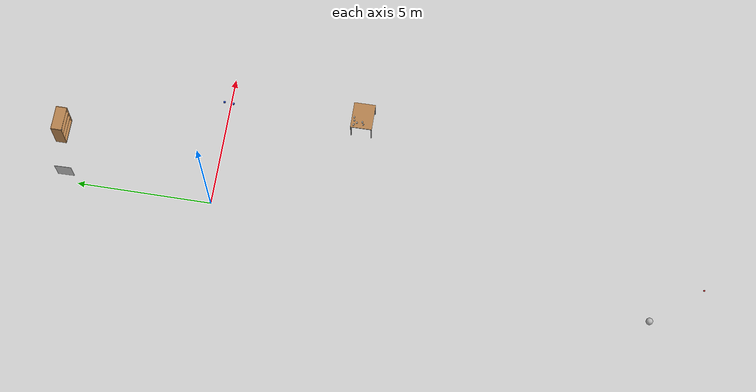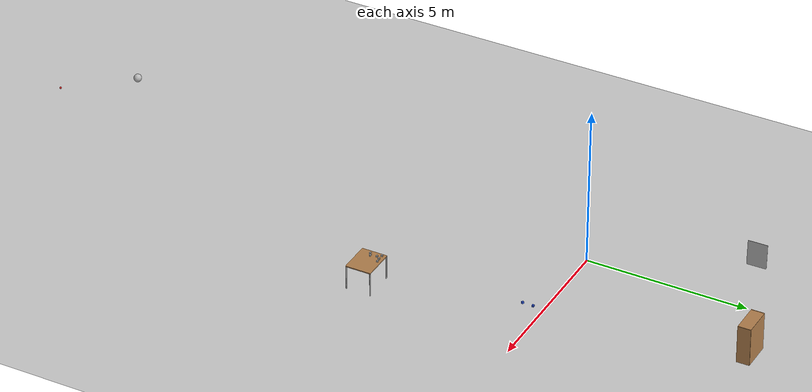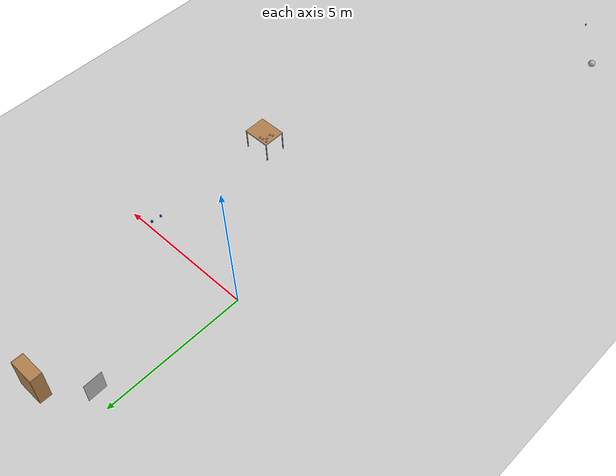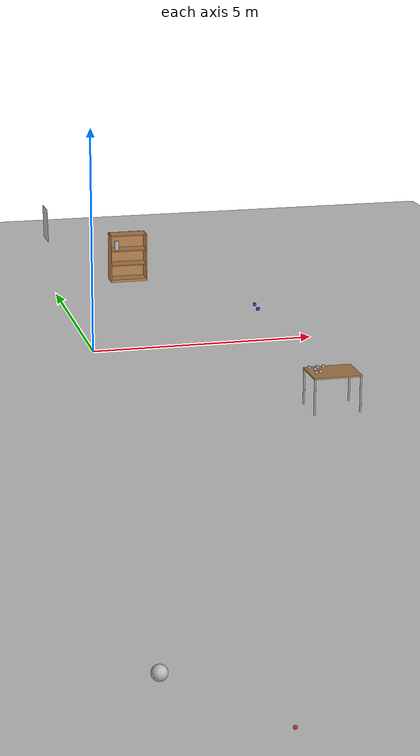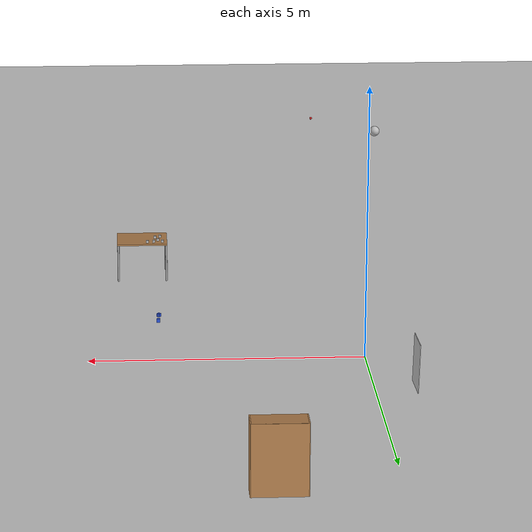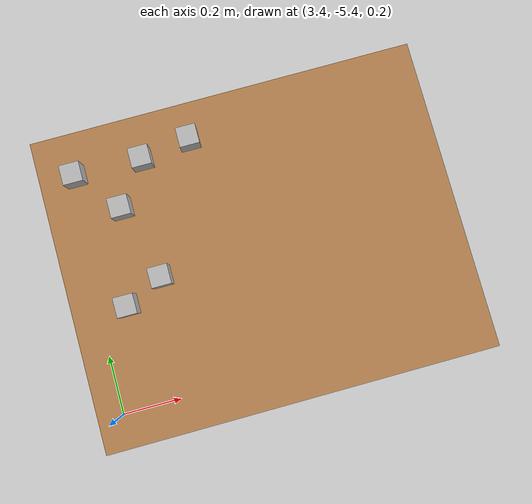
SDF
<sdf version="1.6">
 <world name="default">
  <model name="ground_plane">
   <static>1</static>
   <link name="link">
    <collision name="collision">
     <geometry><plane><normal>0 0 1</normal><size>100 100</size></plane></geometry>
     <surface><friction><ode><mu>100</mu><mu2>50</mu2></ode></friction></surface>
    </collision>
    <visual name="visual">
     <cast_shadows>0</cast_shadows>
     <geometry><plane><normal>0 0 1</normal><size>100 100</size></plane></geometry>
     <material>
      <script><uri>file://media/materials/scripts/gazebo.material</uri><name>Gazebo/Grey</name></script>
     </material>
    </visual>
   </link>
  </model>
  <light name="sun" type="directional">
   <pose>0 0 10 0 -0 0</pose>
   <diffuse>0.8 0.8 0.8 1</diffuse>
   <specular>0.1 0.1 0.1 1</specular>
   <attenuation>
    <range>1000</range>
    <constant>0.9</constant>
    <linear>0.01</linear>
    <quadratic>0.001</quadratic>
   </attenuation>
   <direction>-0.5 0.5 -1</direction>
  </light>
  <model name="demo_cube">
   <static>0</static>
   <link name="link">
    <inertial>
     <mass>0.25</mass>
     <inertia><ixx>0.001</ixx><ixy>0</ixy><ixz>0</ixz><iyy>0.001</iyy><iyz>0</iyz><izz>0.001</izz></inertia>
    </inertial>
    <collision name="collision">
     <geometry><box><size>0.06 0.06 0.06</size></box></geometry>
     <surface>
      <friction><ode><mu>30</mu><mu2>30</mu2></ode></friction>
      <contact><ode><kp>1e+06</kp><kd>100</kd><max_vel>1</max_vel><min_depth>0.002</min_depth></ode></contact>
     </surface>
    </collision>
    <visual name="visual">
     <geometry><box><size>0.06 0.06 0.06</size></box></geometry>
     <material>
      <script><uri>file://media/materials/scripts/gazebo.material</uri><name>Gazebo/Blue</name></script>
     </material>
    </visual>
    <velocity_decay><linear>0</linear><angular>0</angular></velocity_decay>
   </link>
   <pose>3.71201 -0.20416 0.796159 1.06567 -1.53515 -1.57159</pose>
  </model>
  <gravity>0 0 -9.8</gravity>
  <magnetic_field>6e-06 2.3e-05 -4.2e-05</magnetic_field>
  <atmosphere type="adiabatic"/>
  <physics name="default_physics" default="0" type="ode">
   <max_step_size>0.001</max_step_size>
   <real_time_factor>1</real_time_factor>
   <real_time_update_rate>1000</real_time_update_rate>
  </physics>
  <scene><ambient>0.4 0.4 0.4 1</ambient><background>0.7 0.7 0.7 1</background><shadows>1</shadows></scene>
  <spherical_coordinates>
   <surface_model>EARTH_WGS84</surface_model>
   <latitude_deg>0</latitude_deg>
   <longitude_deg>0</longitude_deg>
   <elevation>0</elevation>
   <heading_deg>0</heading_deg>
  </spherical_coordinates>
  <model name="table">
   <static>1</static>
   <link name="link">
    <collision name="surface">
     <pose>0 0 0.762 0 -0 0</pose>
     <geometry><box><size>1 0.8 0.03</size></box></geometry>
    </collision>
    <visual name="visual1">
     <pose>0 0 0.762 0 -0 0</pose>
     <geometry><box><size>1 0.8 0.03</size></box></geometry>
     <material>
      <script><uri>file://media/materials/scripts/gazebo.material</uri><name>Gazebo/Wood</name></script>
     </material>
    </visual>
    <collision name="front_left_leg">
     <pose>0.48 0.38 0.381 0 -0 0</pose>
     <geometry><cylinder><radius>0.02</radius><length>0.762</length></cylinder></geometry>
    </collision>
    <visual name="front_left_leg">
     <pose>0.48 0.38 0.381 0 -0 0</pose>
     <geometry><cylinder><radius>0.02</radius><length>0.762</length></cylinder></geometry>
     <material>
      <script><uri>file://media/materials/scripts/gazebo.material</uri><name>Gazebo/Grey</name></script>
     </material>
    </visual>
    <collision name="front_right_leg">
     <pose>0.48 -0.38 0.381 0 -0 0</pose>
     <geometry><cylinder><radius>0.02</radius><length>0.762</length></cylinder></geometry>
    </collision>
    <visual name="front_right_leg">
     <pose>0.48 -0.38 0.381 0 -0 0</pose>
     <geometry><cylinder><radius>0.02</radius><length>0.762</length></cylinder></geometry>
     <material>
      <script><uri>file://media/materials/scripts/gazebo.material</uri><name>Gazebo/Grey</name></script>
     </material>
    </visual>
    <collision name="back_right_leg">
     <pose>-0.48 -0.38 0.381 0 -0 0</pose>
     <geometry><cylinder><radius>0.02</radius><length>0.762</length></cylinder></geometry>
    </collision>
    <visual name="back_right_leg">
     <pose>-0.48 -0.38 0.381 0 -0 0</pose>
     <geometry><cylinder><radius>0.02</radius><length>0.762</length></cylinder></geometry>
     <material>
      <script><uri>file://media/materials/scripts/gazebo.material</uri><name>Gazebo/Grey</name></script>
     </material>
    </visual>
    <collision name="back_left_leg">
     <pose>-0.48 0.38 0.381 0 -0 0</pose>
     <geometry><cylinder><radius>0.02</radius><length>0.762</length></cylinder></geometry>
    </collision>
    <visual name="back_left_leg">
     <pose>-0.48 0.38 0.381 0 -0 0</pose>
     <geometry><cylinder><radius>0.02</radius><length>0.762</length></cylinder></geometry>
     <material>
      <script><uri>file://media/materials/scripts/gazebo.material</uri><name>Gazebo/Grey</name></script>
     </material>
    </visual>
    <velocity_decay><linear>0</linear><angular>0</angular></velocity_decay>
   </link>
   <pose>3.97984 -5.0206 0 0 -0 0.003286</pose>
  </model>
  <model name="cube0">
   <link name="link">
    <inertial>
     <mass>0.39</mass>
     <inertia><ixx>0</ixx><ixy>0</ixy><ixz>0</ixz><iyy>0</iyy><iyz>0</iyz><izz>0</izz></inertia>
    </inertial>
    <collision name="collision"><geometry><box><size>0.05 0.05 0.05</size></box></geometry></collision>
    <visual name="visual">
     <geometry><box><size>0.05 0.05 0.05</size></box></geometry>
     <material>
      <script>
       <uri>model://marker0/materials/scripts</uri>
       <uri>model://marker0/materials/textures</uri>
       <name>Marker0/Diffuse</name>
      </script>
     </material>
    </visual>
   </link>
   <pose>3.57321 -4.73561 0.802001 -2.3e-05 -4e-06 1.5e-05</pose>
  </model>
  <model name="cube0_0">
   <link name="link">
    <inertial>
     <mass>0.39</mass>
     <inertia><ixx>0</ixx><ixy>0</ixy><ixz>0</ixz><iyy>0</iyy><iyz>0</iyz><izz>0</izz></inertia>
    </inertial>
    <collision name="collision"><geometry><box><size>0.05 0.05 0.05</size></box></geometry></collision>
    <visual name="visual">
     <geometry><box><size>0.05 0.05 0.05</size></box></geometry>
     <material>
      <script>
       <uri>model://marker0/materials/scripts</uri>
       <uri>model://marker0/materials/textures</uri>
       <name>Marker0/Diffuse</name>
      </script>
     </material>
    </visual>
   </link>
   <pose>3.71989 -5.03618 0.802001 -2.2e-05 1.5e-05 -7.3e-05</pose>
  </model>
  <model name="cube1">
   <link name="link">
    <inertial>
     <mass>0.39</mass>
     <inertia><ixx>0</ixx><ixy>0</ixy><ixz>0</ixz><iyy>0</iyy><iyz>0</iyz><izz>0</izz></inertia>
    </inertial>
    <collision name="collision"><geometry><box><size>0.05 0.05 0.05</size></box></geometry></collision>
    <visual name="visual">
     <geometry><box><size>0.05 0.05 0.05</size></box></geometry>
     <material>
      <script>
       <uri>model://marker1/materials/scripts</uri>
       <uri>model://marker1/materials/textures</uri>
       <name>Marker1/Diffuse</name>
      </script>
     </material>
    </visual>
   </link>
   <pose>3.66679 -4.84522 0.802001 -9e-06 1.7e-05 1e-05</pose>
  </model>
  <model name="cube1_0">
   <link name="link">
    <inertial>
     <mass>0.39</mass>
     <inertia><ixx>0</ixx><ixy>0</ixy><ixz>0</ixz><iyy>0</iyy><iyz>0</iyz><izz>0</izz></inertia>
    </inertial>
    <collision name="collision"><geometry><box><size>0.05 0.05 0.05</size></box></geometry></collision>
    <visual name="visual">
     <geometry><box><size>0.05 0.05 0.05</size></box></geometry>
     <material>
      <script>
       <uri>model://marker1/materials/scripts</uri>
       <uri>model://marker1/materials/textures</uri>
       <name>Marker1/Diffuse</name>
      </script>
     </material>
    </visual>
   </link>
   <pose>3.62242 -5.08409 0.802001 -1.1e-05 1.7e-05 1.4e-05</pose>
  </model>
  <model name="cube2">
   <link name="link">
    <inertial>
     <mass>0.39</mass>
     <inertia><ixx>0</ixx><ixy>0</ixy><ixz>0</ixz><iyy>0</iyy><iyz>0</iyz><izz>0</izz></inertia>
    </inertial>
    <collision name="collision"><geometry><box><size>0.05 0.05 0.05</size></box></geometry></collision>
    <visual name="visual">
     <geometry><box><size>0.05 0.05 0.05</size></box></geometry>
     <material>
      <script>
       <uri>model://marker2/materials/scripts</uri>
       <uri>model://marker2/materials/textures</uri>
       <name>Marker2/Diffuse</name>
      </script>
     </material>
    </visual>
   </link>
   <pose>3.87272 -4.71882 0.802001 1.3e-05 -2.6e-05 1.1e-05</pose>
  </model>
  <model name="cube2_0">
   <link name="link">
    <inertial>
     <mass>0.39</mass>
     <inertia><ixx>0</ixx><ixy>0</ixy><ixz>0</ixz><iyy>0</iyy><iyz>0</iyz><izz>0</izz></inertia>
    </inertial>
    <collision name="collision"><geometry><box><size>0.05 0.05 0.05</size></box></geometry></collision>
    <visual name="visual">
     <geometry><box><size>0.05 0.05 0.05</size></box></geometry>
     <material>
      <script>
       <uri>model://marker2/materials/scripts</uri>
       <uri>model://marker2/materials/textures</uri>
       <name>Marker2/Diffuse</name>
      </script>
     </material>
    </visual>
   </link>
   <pose>3.746 -4.73785 0.802001 1.4e-05 2.4e-05 1e-05</pose>
  </model>
  <model name="demo_cube_0">
   <static>0</static>
   <link name="link">
    <inertial>
     <mass>0.25</mass>
     <inertia><ixx>0.001</ixx><ixy>0</ixy><ixz>0</ixz><iyy>0.001</iyy><iyz>0</iyz><izz>0.001</izz></inertia>
    </inertial>
    <collision name="collision">
     <geometry><box><size>0.06 0.06 0.06</size></box></geometry>
     <surface>
      <friction><ode><mu>30</mu><mu2>30</mu2></ode></friction>
      <contact><ode><kp>1e+06</kp><kd>100</kd><max_vel>1</max_vel><min_depth>0.002</min_depth></ode></contact>
     </surface>
    </collision>
    <visual name="visual">
     <geometry><box><size>0.06 0.06 0.06</size></box></geometry>
     <material>
      <script><uri>file://media/materials/scripts/gazebo.material</uri><name>Gazebo/Blue</name></script>
     </material>
    </visual>
    <velocity_decay><linear>0</linear><angular>0</angular></velocity_decay>
   </link>
   <pose>3.72959 0.133871 0.808214 0.035646 -2.8e-05 0</pose>
  </model>
  <model name="frc2016_ball">
   <pose>-2.03737 -16.3002 0.136122 0 -0 0</pose>
   <link name="link">
    <inertial>
     <mass>0.213</mass>
     <inertia>
      <ixx>0.00322667</ixx>
      <ixy>0</ixy>
      <ixz>0</ixz>
      <iyy>0.00322667</iyy>
      <iyz>0</iyz>
      <izz>0.00322667</izz>
     </inertia>
    </inertial>
    <visual name="visual"><geometry><sphere><radius>0.127</radius></sphere></geometry></visual>
    <collision name="collision">
     <geometry><sphere><radius>0.127</radius></sphere></geometry>
     <surface>
      <bounce><restitution_coefficient>0.15937</restitution_coefficient><threshold>0</threshold></bounce>
      <contact><ode><max_vel>100</max_vel><min_depth>0.001</min_depth></ode></contact>
     </surface>
    </collision>
   </link>
  </model>
  <model name="bookshelf">
   <static>1</static>
   <link name="link">
    <inertial><mass>1</mass></inertial>
    <collision name="back">
     <pose>0 0.005 0.6 0 -0 0</pose>
     <geometry><box><size>0.9 0.01 1.2</size></box></geometry>
    </collision>
    <visual name="visual1">
     <pose>0 0.005 0.6 0 -0 0</pose>
     <geometry><box><size>0.9 0.01 1.2</size></box></geometry>
     <material>
      <script><uri>file://media/materials/scripts/gazebo.material</uri><name>Gazebo/Wood</name></script>
     </material>
    </visual>
    <collision name="left_side">
     <pose>0.45 -0.195 0.6 0 -0 0</pose>
     <geometry><box><size>0.02 0.4 1.2</size></box></geometry>
    </collision>
    <visual name="visual2">
     <pose>0.45 -0.195 0.6 0 -0 0</pose>
     <geometry><box><size>0.02 0.4 1.2</size></box></geometry>
     <material>
      <script><uri>file://media/materials/scripts/gazebo.material</uri><name>Gazebo/Wood</name></script>
     </material>
    </visual>
    <collision name="right_side">
     <pose>-0.45 -0.195 0.6 0 -0 0</pose>
     <geometry><box><size>0.02 0.4 1.2</size></box></geometry>
    </collision>
    <visual name="visual3">
     <pose>-0.45 -0.195 0.6 0 -0 0</pose>
     <geometry><box><size>0.02 0.4 1.2</size></box></geometry>
     <material>
      <script><uri>file://media/materials/scripts/gazebo.material</uri><name>Gazebo/Wood</name></script>
     </material>
    </visual>
    <collision name="bottom">
     <pose>0 -0.195 0.03 0 -0 0</pose>
     <geometry><box><size>0.88 0.4 0.06</size></box></geometry>
    </collision>
    <visual name="visual4">
     <pose>0 -0.195 0.03 0 -0 0</pose>
     <geometry><box><size>0.88 0.4 0.06</size></box></geometry>
     <material>
      <script><uri>file://media/materials/scripts/gazebo.material</uri><name>Gazebo/Wood</name></script>
     </material>
    </visual>
    <collision name="top">
     <pose>0 -0.195 1.19 0 -0 0</pose>
     <geometry><box><size>0.88 0.4 0.02</size></box></geometry>
    </collision>
    <visual name="visual5">
     <pose>0 -0.195 1.19 0 -0 0</pose>
     <geometry><box><size>0.88 0.4 0.02</size></box></geometry>
     <material>
      <script><uri>file://media/materials/scripts/gazebo.material</uri><name>Gazebo/Wood</name></script>
     </material>
    </visual>
    <collision name="low_shelf">
     <pose>0 -0.195 0.43 0 -0 0</pose>
     <geometry><box><size>0.88 0.4 0.02</size></box></geometry>
    </collision>
    <visual name="visual6">
     <pose>0 -0.195 0.43 0 -0 0</pose>
     <geometry><box><size>0.88 0.4 0.02</size></box></geometry>
     <material>
      <script><uri>file://media/materials/scripts/gazebo.material</uri><name>Gazebo/Wood</name></script>
     </material>
    </visual>
    <collision name="high_shelf">
     <pose>0 -0.195 0.8 0 -0 0</pose>
     <geometry><box><size>0.88 0.4 0.02</size></box></geometry>
    </collision>
    <visual name="visual7">
     <pose>0 -0.195 0.8 0 -0 0</pose>
     <geometry><box><size>0.88 0.4 0.02</size></box></geometry>
     <material>
      <script><uri>file://media/materials/scripts/gazebo.material</uri><name>Gazebo/Wood</name></script>
     </material>
    </visual>
   </link>
   <pose>1.97668 6.16281 0.010601 0.012153 -0.000589 -0.003522</pose>
  </model>
  <model name="beer_0">
   <link name="link">
    <pose>0 0 0.115 0 -0 0</pose>
    <inertial>
     <mass>0.39</mass>
     <inertia><ixx>0.00058</ixx><ixy>0</ixy><ixz>0</ixz><iyy>0.00058</iyy><iyz>0</iyz><izz>0.00019</izz></inertia>
    </inertial>
    <collision name="collision">
     <geometry><cylinder><radius>0.055</radius><length>0.23</length></cylinder></geometry>
    </collision>
    <visual name="visual">
     <geometry><cylinder><radius>0.055</radius><length>0.23</length></cylinder></geometry>
     <material>
      <script>
       <uri>model://beer/materials/scripts</uri>
       <uri>model://beer/materials/textures</uri>
       <name>Beer/Diffuse</name>
      </script>
     </material>
    </visual>
   </link>
   <pose>1.68112 5.88188 0.817061 0.012151 -5.4e-05 -0.04794</pose>
  </model>
  <model name="RoboCup SPL Ball">
   <static>0</static>
   <link name="ball">
    <inertial>
     <mass>0.0056</mass>
     <inertia>
      <ixx>2.37e-06</ixx>
      <iyy>2.37e-06</iyy>
      <izz>2.37e-06</izz>
      <ixy>0</ixy>
      <ixz>0</ixz>
      <iyz>0</iyz>
     </inertia>
    </inertial>
    <collision name="collision"><geometry><sphere><radius>0.0325</radius></sphere></geometry></collision>
    <visual name="visual">
     <geometry><sphere><radius>0.0325</radius></sphere></geometry>
     <material>
      <script><uri>file://media/materials/scripts/gazebo.material</uri><name>Gazebo/RedBright</name></script>
     </material>
    </visual>
   </link>
   <pose>-0.562146 -18.1539 0.0425 0 -0 0</pose>
  </model>
  <model name="maoyeye">
   <static>1</static>
   <link name="link">
    <inertial>
     <mass>1</mass>
     <inertia><ixx>0</ixx><ixy>0</ixy><ixz>0</ixz><iyy>0</iyy><iyz>0</iyz><izz>0</izz></inertia>
    </inertial>
    <collision name="collision"><geometry><box><size>0.79 0.6 0.01</size></box></geometry></collision>
    <visual name="visual">
     <geometry><box><size>0.79 0.6 0.01</size></box></geometry>
     <material>
      <script>
       <uri>model://maoyeye/materials/scripts</uri>
       <uri>model://maoyeye/materials/textures</uri>
       <name>maoyeye/Diffuse</name>
      </script>
     </material>
    </visual>
   </link>
   <pose>-0.216779 5.1236 1.7655 -0.00663 -1.54882 -3.11597</pose>
  </model>
 </world>
</sdf>
